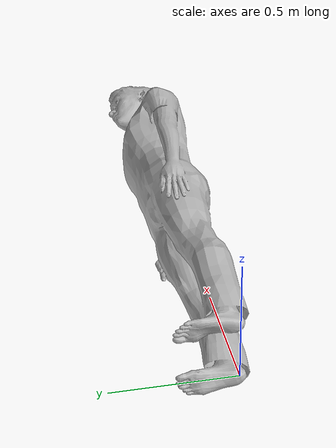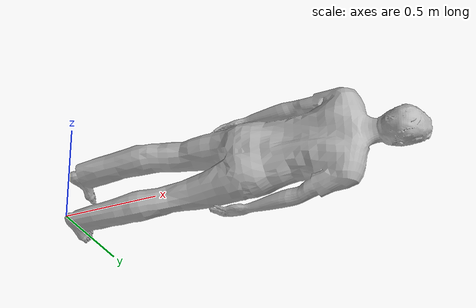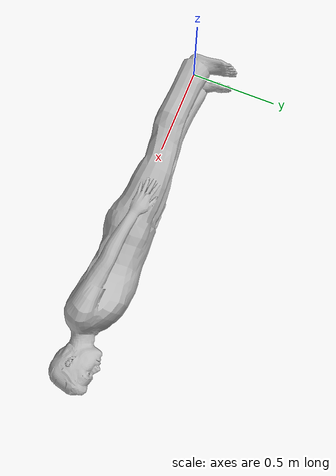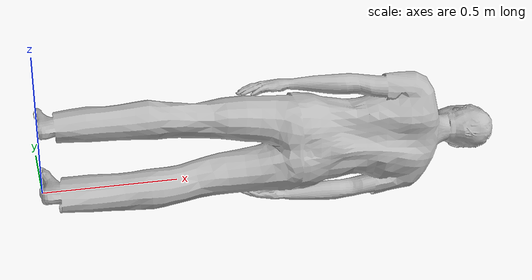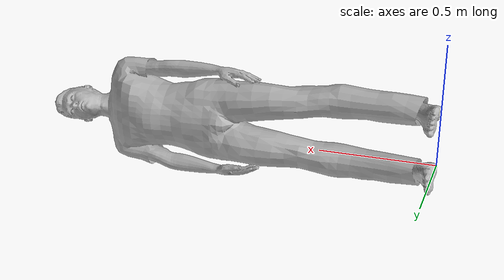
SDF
<?xml version="1.0" ?>
<sdf version="1.5">
  <model name="person_delado">
    <link name="link">
      <inertial>
        <pose>0 -0.1 0.95 0 0 0</pose>
        <mass>80.0</mass>
        <inertia>
          <ixx>24.88</ixx>
          <ixy>0</ixy>
          <ixz>0</ixz>
          <iyy>25.73</iyy>
          <iyz>0</iyz>
          <izz>2.48</izz>
        </inertia>
      </inertial>

      <!-- Colisión inferior ajustada -->
      <collision name="bottom">
        <!-- Posición ajustada para estar en el suelo, con una pequeña elevación -->
        <pose>0 -0.1 0.1 0 0 0</pose>
        <geometry>
          <box>
            <!-- Tamaño aumentado en Z para que cubra mejor la base -->
            <size>0.5 0.35 0.2</size>
          </box>
        </geometry>
      </collision>

      <!-- Colisión principal ajustada (cuerpo de la persona) -->
      <collision name="person">
        <!-- Alineación del cuerpo con el plano, sin intersección -->
        <pose>0 0 0.1 0 0 0</pose>
        <geometry>
          <mesh>
            <uri>model://person_standing/meshes/standing.dae</uri>
          </mesh>
        </geometry>
      </collision>

      <!-- Visual del modelo ajustado -->
      <visual name="visual">
        <!-- Alineado correctamente para que el modelo no salga ni entre en el plano -->
        <pose>0 0 0.1 1.57 -1.57 1.57</pose>
        <geometry>
          <mesh>
            <uri>model://person_standing/meshes/standing.dae</uri>
          </mesh>
        </geometry>
      </visual>
    </link>
  </model>
</sdf>
